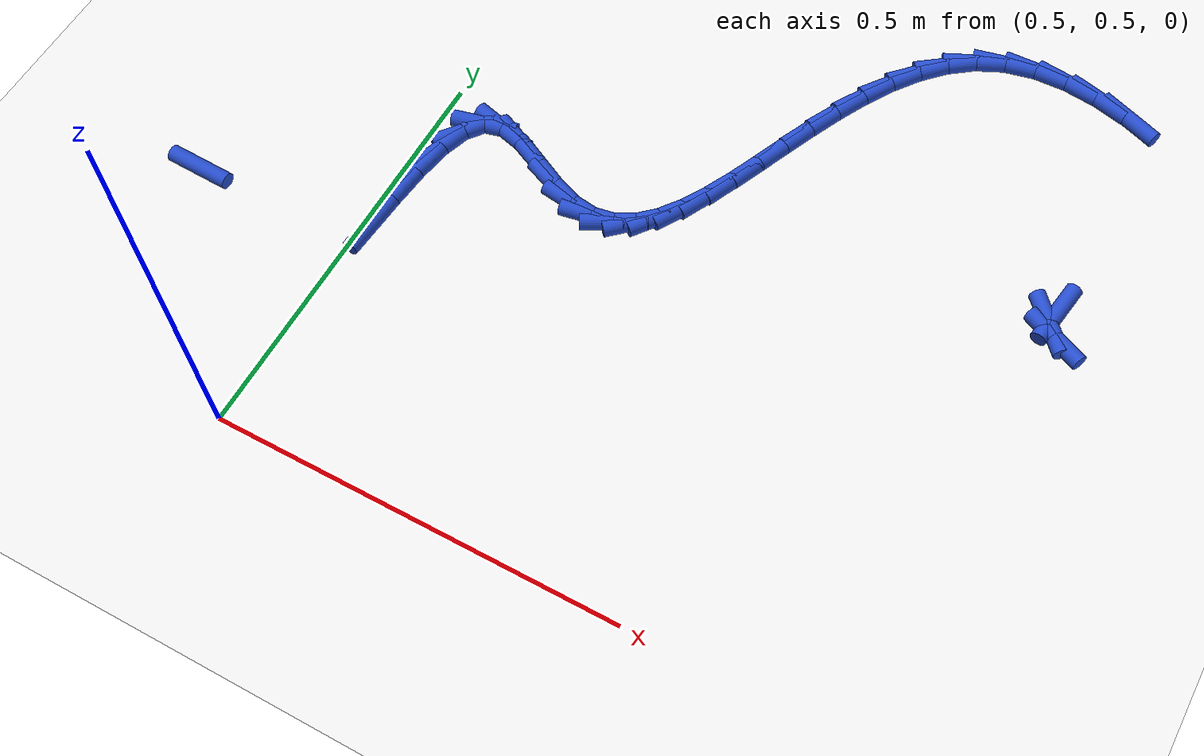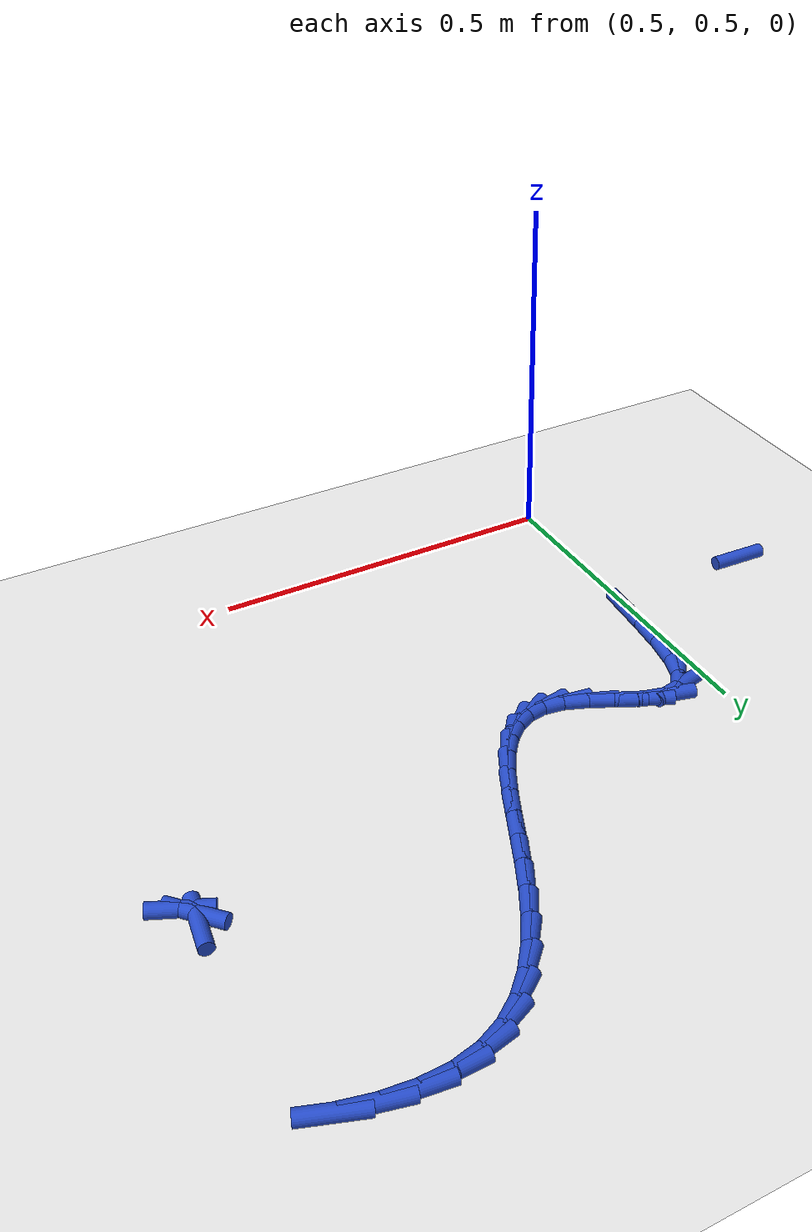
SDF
<sdf version="1.6">
 <world name="default">
  <model name="ground_plane">
   <static>1</static>
   <link name="link">
    <collision name="collision">
     <geometry><plane><normal>0 0 1</normal><size>100 100</size></plane></geometry>
     <surface><friction><ode><mu>100</mu><mu2>50</mu2></ode></friction></surface>
    </collision>
    <visual name="visual">
     <cast_shadows>0</cast_shadows>
     <geometry><plane><normal>0 0 1</normal><size>100 100</size></plane></geometry>
     <material>
      <script><uri>file://media/materials/scripts/gazebo.material</uri><name>Gazebo/WhiteGlow</name></script>
     </material>
    </visual>
   </link>
  </model>
  <model name="line">
   <link name="link_23">
    <pose>0.2922433856528534 0.7571992408844337 0.01 0 1.57 -0.03728944717608976</pose>
    <collision name="collision">
     <geometry><cylinder><radius>0.01</radius><length>0.08</length></cylinder></geometry>
    </collision>
    <visual name="visual">
     <material>
      <script><name>Gazebo/Blue</name><uri>file://media/materials/scripts/gazebo.material</uri></script>
     </material>
     <geometry><cylinder><radius>0.01</radius><length>0.08</length></cylinder></geometry>
    </visual>
   </link>
   <link name="link_34">
    <pose>0.5119531320704979 0.7857779889546928 0.01 0 1.57 1.493479208219994</pose>
    <collision name="collision">
     <geometry><cylinder><radius>0.01</radius><length>0.08</length></cylinder></geometry>
    </collision>
    <visual name="visual">
     <material>
      <script><name>Gazebo/Blue</name><uri>file://media/materials/scripts/gazebo.material</uri></script>
     </material>
     <geometry><cylinder><radius>0.01</radius><length>0.08</length></cylinder></geometry>
    </visual>
   </link>
   <link name="link_35">
    <pose>0.5154717953037297 0.8311967662353396 0.01 0 1.57 1.4688872397158814</pose>
    <collision name="collision">
     <geometry><cylinder><radius>0.01</radius><length>0.08</length></cylinder></geometry>
    </collision>
    <visual name="visual">
     <material>
      <script><name>Gazebo/Blue</name><uri>file://media/materials/scripts/gazebo.material</uri></script>
     </material>
     <geometry><cylinder><radius>0.01</radius><length>0.08</length></cylinder></geometry>
    </visual>
   </link>
   <link name="link_36">
    <pose>0.5200183031978493 0.8756555865516232 0.01 0 1.57 1.397163090553568</pose>
    <collision name="collision">
     <geometry><cylinder><radius>0.01</radius><length>0.08</length></cylinder></geometry>
    </collision>
    <visual name="visual">
     <material>
      <script><name>Gazebo/Blue</name><uri>file://media/materials/scripts/gazebo.material</uri></script>
     </material>
     <geometry><cylinder><radius>0.01</radius><length>0.08</length></cylinder></geometry>
    </visual>
   </link>
   <link name="link_37">
    <pose>0.5270264440959967 0.9156109014045218 0.01 0 1.57 1.2415204685135708</pose>
    <collision name="collision">
     <geometry><cylinder><radius>0.01</radius><length>0.08</length></cylinder></geometry>
    </collision>
    <visual name="visual">
     <material>
      <script><name>Gazebo/Blue</name><uri>file://media/materials/scripts/gazebo.material</uri></script>
     </material>
     <geometry><cylinder><radius>0.01</radius><length>0.08</length></cylinder></geometry>
    </visual>
   </link>
   <link name="link_38">
    <pose>0.5379300063413122 0.9475191622950129 0.01 0 1.57 0.8966965953635448</pose>
    <collision name="collision">
     <geometry><cylinder><radius>0.01</radius><length>0.08</length></cylinder></geometry>
    </collision>
    <visual name="visual">
     <material>
      <script><name>Gazebo/Blue</name><uri>file://media/materials/scripts/gazebo.material</uri></script>
     </material>
     <geometry><cylinder><radius>0.01</radius><length>0.08</length></cylinder></geometry>
    </visual>
   </link>
   <link name="link_39">
    <pose>0.5541627782769359 0.9678368207240746 0.01 0 1.57 0.23488260720719853</pose>
    <collision name="collision">
     <geometry><cylinder><radius>0.01</radius><length>0.08</length></cylinder></geometry>
    </collision>
    <visual name="visual">
     <material>
      <script><name>Gazebo/Blue</name><uri>file://media/materials/scripts/gazebo.material</uri></script>
     </material>
     <geometry><cylinder><radius>0.01</radius><length>0.08</length></cylinder></geometry>
    </visual>
   </link>
   <link name="link_40">
    <pose>0.577037416481246 0.9733107121537168 0.01 0 1.57 -0.26231255431478334</pose>
    <collision name="collision">
     <geometry><cylinder><radius>0.01</radius><length>0.08</length></cylinder></geometry>
    </collision>
    <visual name="visual">
     <material>
      <script><name>Gazebo/Blue</name><uri>file://media/materials/scripts/gazebo.material</uri></script>
     </material>
     <geometry><cylinder><radius>0.01</radius><length>0.08</length></cylinder></geometry>
    </visual>
   </link>
   <link name="link_41">
    <pose>0.6058252776995768 0.9655811921918901 0.01 0 1.57 -0.4407397280460852</pose>
    <collision name="collision">
     <geometry><cylinder><radius>0.01</radius><length>0.08</length></cylinder></geometry>
    </collision>
    <visual name="visual">
     <material>
      <script><name>Gazebo/Blue</name><uri>file://media/materials/scripts/gazebo.material</uri></script>
     </material>
     <geometry><cylinder><radius>0.01</radius><length>0.08</length></cylinder></geometry>
    </visual>
   </link>
   <link name="link_42">
    <pose>0.6381004045423657 0.9503575144979994 0.01 0 1.57 -0.4694582988560868</pose>
    <collision name="collision">
     <geometry><cylinder><radius>0.01</radius><length>0.08</length></cylinder></geometry>
    </collision>
    <visual name="visual">
     <material>
      <script><name>Gazebo/Blue</name><uri>file://media/materials/scripts/gazebo.material</uri></script>
     </material>
     <geometry><cylinder><radius>0.01</radius><length>0.08</length></cylinder></geometry>
    </visual>
   </link>
   <link name="link_43">
    <pose>0.6713852402683699 0.933472629634216 0.01 0 1.57 -0.38014816157834924</pose>
    <collision name="collision">
     <geometry><cylinder><radius>0.01</radius><length>0.08</length></cylinder></geometry>
    </collision>
    <visual name="visual">
     <material>
      <script><name>Gazebo/Blue</name><uri>file://media/materials/scripts/gazebo.material</uri></script>
     </material>
     <geometry><cylinder><radius>0.01</radius><length>0.08</length></cylinder></geometry>
    </visual>
   </link>
   <link name="link_44">
    <pose>0.7032024556235295 0.9207589626067163 0.01 0 1.57 -0.14386166004241532</pose>
    <collision name="collision">
     <geometry><cylinder><radius>0.01</radius><length>0.08</length></cylinder></geometry>
    </collision>
    <visual name="visual">
     <material>
      <script><name>Gazebo/Blue</name><uri>file://media/materials/scripts/gazebo.material</uri></script>
     </material>
     <geometry><cylinder><radius>0.01</radius><length>0.08</length></cylinder></geometry>
    </visual>
   </link>
   <link name="link_45">
    <pose>0.7316878260420713 0.9166325032648772 0.01 0 1.57 0.17179562194703762</pose>
    <collision name="collision">
     <geometry><cylinder><radius>0.01</radius><length>0.08</length></cylinder></geometry>
    </collision>
    <visual name="visual">
     <material>
      <script><name>Gazebo/Blue</name><uri>file://media/materials/scripts/gazebo.material</uri></script>
     </material>
     <geometry><cylinder><radius>0.01</radius><length>0.08</length></cylinder></geometry>
    </visual>
   </link>
   <link name="link_46">
    <pose>0.756924127669796 0.9210111511467897 0.01 0 1.57 0.4876830210978018</pose>
    <collision name="collision">
     <geometry><cylinder><radius>0.01</radius><length>0.08</length></cylinder></geometry>
    </collision>
    <visual name="visual">
     <material>
      <script><name>Gazebo/Blue</name><uri>file://media/materials/scripts/gazebo.material</uri></script>
     </material>
     <geometry><cylinder><radius>0.01</radius><length>0.08</length></cylinder></geometry>
    </visual>
   </link>
   <link name="link_47">
    <pose>0.7793797400025937 0.9329219593297636 0.01 0 1.57 0.742090968433786</pose>
    <collision name="collision">
     <geometry><cylinder><radius>0.01</radius><length>0.08</length></cylinder></geometry>
    </collision>
    <visual name="visual">
     <material>
      <script><name>Gazebo/Blue</name><uri>file://media/materials/scripts/gazebo.material</uri></script>
     </material>
     <geometry><cylinder><radius>0.01</radius><length>0.08</length></cylinder></geometry>
    </visual>
   </link>
   <link name="link_48">
    <pose>0.7995230425363558 0.9513919808911093 0.01 0 1.57 0.9204887943762573</pose>
    <collision name="collision">
     <geometry><cylinder><radius>0.01</radius><length>0.08</length></cylinder></geometry>
    </collision>
    <visual name="visual">
     <material>
      <script><name>Gazebo/Blue</name><uri>file://media/materials/scripts/gazebo.material</uri></script>
     </material>
     <geometry><cylinder><radius>0.01</radius><length>0.08</length></cylinder></geometry>
    </visual>
   </link>
   <link name="link_49">
    <pose>0.8178224147669724 0.9754482689081369 0.01 0 1.57 1.037535776436462</pose>
    <collision name="collision">
     <geometry><cylinder><radius>0.01</radius><length>0.08</length></cylinder></geometry>
    </collision>
    <visual name="visual">
     <material>
      <script><name>Gazebo/Blue</name><uri>file://media/materials/scripts/gazebo.material</uri></script>
     </material>
     <geometry><cylinder><radius>0.01</radius><length>0.08</length></cylinder></geometry>
    </visual>
   </link>
   <link name="link_50">
    <pose>0.8347462361903344 1.0041178764581569 0.01 0 1.57 1.110579899351142</pose>
    <collision name="collision">
     <geometry><cylinder><radius>0.01</radius><length>0.08</length></cylinder></geometry>
    </collision>
    <visual name="visual">
     <material>
      <script><name>Gazebo/Blue</name><uri>file://media/materials/scripts/gazebo.material</uri></script>
     </material>
     <geometry><cylinder><radius>0.01</radius><length>0.08</length></cylinder></geometry>
    </visual>
   </link>
   <link name="link_51">
    <pose>0.8507628863023329 1.0364278566184792 0.01 0 1.57 1.151800066752981</pose>
    <collision name="collision">
     <geometry><cylinder><radius>0.01</radius><length>0.08</length></cylinder></geometry>
    </collision>
    <visual name="visual">
     <material>
      <script><name>Gazebo/Blue</name><uri>file://media/materials/scripts/gazebo.material</uri></script>
     </material>
     <geometry><cylinder><radius>0.01</radius><length>0.08</length></cylinder></geometry>
    </visual>
   </link>
   <link name="link_52">
    <pose>0.8663407445988583 1.0714052624664145 0.01 0 1.57 1.1684200797756157</pose>
    <collision name="collision">
     <geometry><cylinder><radius>0.01</radius><length>0.08</length></cylinder></geometry>
    </collision>
    <visual name="visual">
     <material>
      <script><name>Gazebo/Blue</name><uri>file://media/materials/scripts/gazebo.material</uri></script>
     </material>
     <geometry><cylinder><radius>0.01</radius><length>0.08</length></cylinder></geometry>
    </visual>
   </link>
   <link name="link_53">
    <pose>0.8819481905758014 1.1080771470792725 0.01 0 1.57 1.164106102001867</pose>
    <collision name="collision">
     <geometry><cylinder><radius>0.01</radius><length>0.08</length></cylinder></geometry>
    </collision>
    <visual name="visual">
     <material>
      <script><name>Gazebo/Blue</name><uri>file://media/materials/scripts/gazebo.material</uri></script>
     </material>
     <geometry><cylinder><radius>0.01</radius><length>0.08</length></cylinder></geometry>
    </visual>
   </link>
   <link name="link_54">
    <pose>0.8980536037290531 1.1454705635343634 0.01 0 1.57 1.1399589707452333</pose>
    <collision name="collision">
     <geometry><cylinder><radius>0.01</radius><length>0.08</length></cylinder></geometry>
    </collision>
    <visual name="visual">
     <material>
      <script><name>Gazebo/Blue</name><uri>file://media/materials/scripts/gazebo.material</uri></script>
     </material>
     <geometry><cylinder><radius>0.01</radius><length>0.08</length></cylinder></geometry>
    </visual>
   </link>
   <link name="link_55">
    <pose>0.915125363554504 1.182612564908998 0.01 0 1.57 1.0950249901635338</pose>
    <collision name="collision">
     <geometry><cylinder><radius>0.01</radius><length>0.08</length></cylinder></geometry>
    </collision>
    <visual name="visual">
     <material>
      <script><name>Gazebo/Blue</name><uri>file://media/materials/scripts/gazebo.material</uri></script>
     </material>
     <geometry><cylinder><radius>0.01</radius><length>0.08</length></cylinder></geometry>
    </visual>
   </link>
   <link name="link_56">
    <pose>0.9336318495480446 1.2185302042804858 0.01 0 1.57 1.0265176223357433</pose>
    <collision name="collision">
     <geometry><cylinder><radius>0.01</radius><length>0.08</length></cylinder></geometry>
    </collision>
    <visual name="visual">
     <material>
      <script><name>Gazebo/Blue</name><uri>file://media/materials/scripts/gazebo.material</uri></script>
     </material>
     <geometry><cylinder><radius>0.01</radius><length>0.08</length></cylinder></geometry>
    </visual>
   </link>
   <link name="link_57">
    <pose>0.9540414412055662 1.2522505347261375 0.01 0 1.57 0.9300552969689843</pose>
    <collision name="collision">
     <geometry><cylinder><radius>0.01</radius><length>0.08</length></cylinder></geometry>
    </collision>
    <visual name="visual">
     <material>
      <script><name>Gazebo/Blue</name><uri>file://media/materials/scripts/gazebo.material</uri></script>
     </material>
     <geometry><cylinder><radius>0.01</radius><length>0.08</length></cylinder></geometry>
    </visual>
   </link>
   <link name="link_58">
    <pose>0.976822518022959 1.2828006093232633 0.01 0 1.57 0.8005029800440301</pose>
    <collision name="collision">
     <geometry><cylinder><radius>0.01</radius><length>0.08</length></cylinder></geometry>
    </collision>
    <visual name="visual">
     <material>
      <script><name>Gazebo/Blue</name><uri>file://media/materials/scripts/gazebo.material</uri></script>
     </material>
     <geometry><cylinder><radius>0.01</radius><length>0.08</length></cylinder></geometry>
    </visual>
   </link>
   <link name="link_59">
    <pose>1.0024434594961145 1.3092074811491734 0.01 0 1.57 0.6344547593436728</pose>
    <collision name="collision">
     <geometry><cylinder><radius>0.01</radius><length>0.08</length></cylinder></geometry>
    </collision>
    <visual name="visual">
     <material>
      <script><name>Gazebo/Blue</name><uri>file://media/materials/scripts/gazebo.material</uri></script>
     </material>
     <geometry><cylinder><radius>0.01</radius><length>0.08</length></cylinder></geometry>
    </visual>
   </link>
   <link name="link_60">
    <pose>1.0313726451209222 1.3304982032811776 0.01 0 1.57 0.4350923461939201</pose>
    <collision name="collision">
     <geometry><cylinder><radius>0.01</radius><length>0.08</length></cylinder></geometry>
    </collision>
    <visual name="visual">
     <material>
      <script><name>Gazebo/Blue</name><uri>file://media/materials/scripts/gazebo.material</uri></script>
     </material>
     <geometry><cylinder><radius>0.01</radius><length>0.08</length></cylinder></geometry>
    </visual>
   </link>
   <link name="link_61">
    <pose>1.064078454393274 1.3456998287965865 0.01 0 1.57 0.21811525118055394</pose>
    <collision name="collision">
     <geometry><cylinder><radius>0.01</radius><length>0.08</length></cylinder></geometry>
    </collision>
    <visual name="visual">
     <material>
      <script><name>Gazebo/Blue</name><uri>file://media/materials/scripts/gazebo.material</uri></script>
     </material>
     <geometry><cylinder><radius>0.01</radius><length>0.08</length></cylinder></geometry>
    </visual>
   </link>
   <link name="link_62">
    <pose>1.1009821249991096 1.3538792047008816 0.01 0 1.57 0.026943637637133318</pose>
    <collision name="collision">
     <geometry><cylinder><radius>0.01</radius><length>0.08</length></cylinder></geometry>
    </collision>
    <visual name="visual">
     <material>
      <script><name>Gazebo/Blue</name><uri>file://media/materials/scripts/gazebo.material</uri></script>
     </material>
     <geometry><cylinder><radius>0.01</radius><length>0.08</length></cylinder></geometry>
    </visual>
   </link>
   <link name="link_63">
    <pose>1.141477354836255 1.3549705576051376 0.01 0 1.57 -0.12227832996808444</pose>
    <collision name="collision">
     <geometry><cylinder><radius>0.01</radius><length>0.08</length></cylinder></geometry>
    </collision>
    <visual name="visual">
     <material>
      <script><name>Gazebo/Blue</name><uri>file://media/materials/scripts/gazebo.material</uri></script>
     </material>
     <geometry><cylinder><radius>0.01</radius><length>0.08</length></cylinder></geometry>
    </visual>
   </link>
   <link name="link_64">
    <pose>1.183960859882995 1.3497496988397337 0.01 0 1.57 -0.24532494615522302</pose>
    <collision name="collision">
     <geometry><cylinder><radius>0.01</radius><length>0.08</length></cylinder></geometry>
    </collision>
    <visual name="visual">
     <material>
      <script><name>Gazebo/Blue</name><uri>file://media/materials/scripts/gazebo.material</uri></script>
     </material>
     <geometry><cylinder><radius>0.01</radius><length>0.08</length></cylinder></geometry>
    </visual>
   </link>
   <link name="link_65">
    <pose>1.2267883276276228 1.3390270732119007 0.01 0 1.57 -0.3554155689781578</pose>
    <collision name="collision">
     <geometry><cylinder><radius>0.01</radius><length>0.08</length></cylinder></geometry>
    </collision>
    <visual name="visual">
     <material>
      <script><name>Gazebo/Blue</name><uri>file://media/materials/scripts/gazebo.material</uri></script>
     </material>
     <geometry><cylinder><radius>0.01</radius><length>0.08</length></cylinder></geometry>
    </visual>
   </link>
   <link name="link_78">
    <pose>1.2524664409658999 1.0481053723649847 0.01 0 1.57 1.4223277259418747</pose>
    <collision name="collision">
     <geometry><cylinder><radius>0.01</radius><length>0.08</length></cylinder></geometry>
    </collision>
    <visual name="visual">
     <material>
      <script><name>Gazebo/Blue</name><uri>file://media/materials/scripts/gazebo.material</uri></script>
     </material>
     <geometry><cylinder><radius>0.01</radius><length>0.08</length></cylinder></geometry>
    </visual>
   </link>
   <link name="link_79">
    <pose>1.250125291547585 1.0324527552749023 0.01 0 1.57 -0.8351219349900775</pose>
    <collision name="collision">
     <geometry><cylinder><radius>0.01</radius><length>0.08</length></cylinder></geometry>
    </collision>
    <visual name="visual">
     <material>
      <script><name>Gazebo/Blue</name><uri>file://media/materials/scripts/gazebo.material</uri></script>
     </material>
     <geometry><cylinder><radius>0.01</radius><length>0.08</length></cylinder></geometry>
    </visual>
   </link>
   <link name="link_80">
    <pose>1.262440665264506 1.0188474440622715 0.01 0 1.57 -0.4339669251728272</pose>
    <collision name="collision">
     <geometry><cylinder><radius>0.01</radius><length>0.08</length></cylinder></geometry>
    </collision>
    <visual name="visual">
     <material>
      <script><name>Gazebo/Blue</name><uri>file://media/materials/scripts/gazebo.material</uri></script>
     </material>
     <geometry><cylinder><radius>0.01</radius><length>0.08</length></cylinder></geometry>
    </visual>
   </link>
  </model>
 </world>
</sdf>
